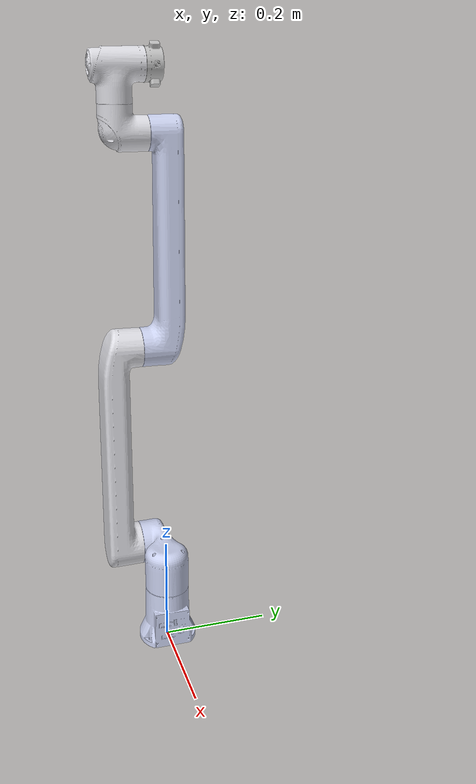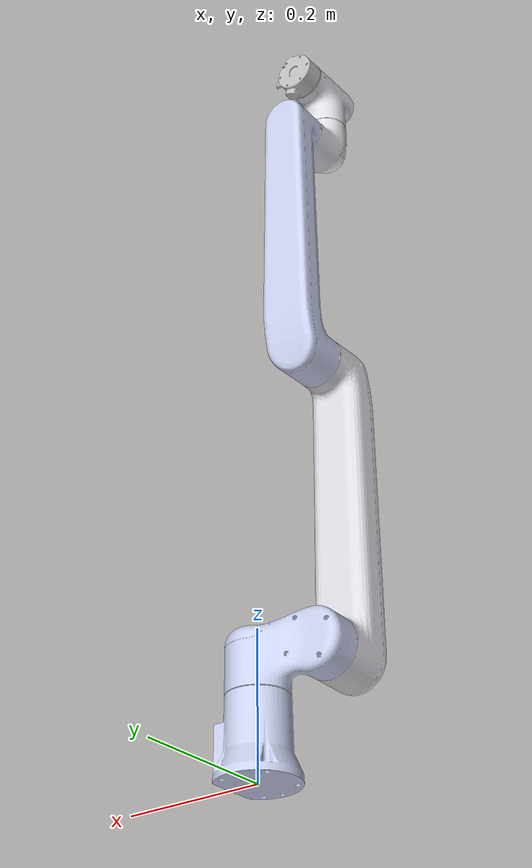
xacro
<?xml version="1.0"?>
<robot xmlns:xacro="http://www.ros.org/wiki/xacro" name="rm_eco63_description">
    <xacro:arg name="link6_type" default="Link6" />

    <!-- Used for fixing robot to Gazebo 'base_link' 将机械手的基座固定在世界坐标上-->
    <link name="world"/>
    <joint name="fixed" type="fixed">
        <parent link="world"/>
        <child link="base_link"/>
    </joint>

    <!-- Import ECO63 robot description. Use the xacro variant so Gazebo gets valid joint limits. -->
    <xacro:property name="link6_type" value="$(arg link6_type)" />
    <xacro:include filename="$(find rm_description)/urdf/rm_eco63_gazebo.urdf.xacro" >
        link6_type:=$(arg link6_type)
    </xacro:include>

    <!-- 对一些link进行gazebo的属性设置 -->
    <gazebo reference="base_link">
        <self_collide>false</self_collide>
        <gravity>false</gravity>
    </gazebo>
    <gazebo reference="Link1">
        <material>Gazebo/Purple</material>
        <self_collide>false</self_collide>
        <gravity>false</gravity>
    </gazebo>
    <gazebo reference="Link2">
        <material>Gazebo/Red</material>
        <gravity>false</gravity>
    </gazebo>
    <gazebo reference="Link3">
        <material>Gazebo/Blue</material>
        <gravity>false</gravity>
    </gazebo>
    <gazebo reference="Link4">
        <material>Gazebo/Green</material>
        <gravity>false</gravity>
    </gazebo>
    <gazebo reference="Link5">
        <material>Gazebo/Yellow</material>
        <gravity>false</gravity>
    </gazebo>
    <gazebo reference="Link6">
        <material>Gazebo/Orange</material>
        <gravity>false</gravity>
    </gazebo>

    <gazebo>
                <self_collide>true</self_collide>
    </gazebo>

    <!-- 声明ros2_control -->
    <ros2_control name="GazeboSystem" type="system">
        <hardware>
            <plugin>gazebo_ros2_control/GazeboSystem</plugin>
        </hardware>
        <joint name="joint1">
            <command_interface name="position"/>
            <state_interface name="position">
                <param name="initial_value">0</param>
            </state_interface>
            <state_interface name="velocity"/>
        </joint>
        <joint name="joint2">
            <command_interface name="position"/>
            <state_interface name="position">
                <param name="initial_value">0</param>
            </state_interface>
            <state_interface name="velocity"/>
        </joint>
        <joint name="joint3">
            <command_interface name="position"/>
            <state_interface name="position">
                <param name="initial_value">0</param>
            </state_interface>
            <state_interface name="velocity"/>
        </joint>
        <joint name="joint4">
            <command_interface name="position"/>
            <state_interface name="position">
                <param name="initial_value">0</param>
            </state_interface>
            <state_interface name="velocity"/>
        </joint>
        <joint name="joint5">
            <command_interface name="position"/>
            <state_interface name="position">
                <param name="initial_value">0</param>
            </state_interface>
            <state_interface name="velocity"/>
        </joint>
        <joint name="joint6">
            <command_interface name="position"/>
            <state_interface name="position">
                <param name="initial_value">0</param>
            </state_interface>
            <state_interface name="velocity"/>
        </joint>
    </ros2_control>

    <!-- 加载ros2_control插件 -->
    <gazebo>
        <plugin filename="libgazebo_ros2_control.so" name="gazebo_ros2_control">
            <parameters>$(find rm_eco63_config)/config/ros2_controllers.yaml</parameters>
            <robot_param>robot_description</robot_param>
            <robot_param_node>robot_state_publisher</robot_param_node>
        </plugin>
    </gazebo>

</robot>

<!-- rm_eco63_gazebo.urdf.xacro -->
<robot  name="rm_eco63_description" xmlns:xacro="http://www.ros.org/wiki/xacro">
    <!-- link6_type -->
    <xacro:arg name="link6_type" default="Link6" />
    <!-- arg->property -->
    <xacro:property name="link6_type" value="$(arg link6_type)" />
    <link
    name="base_link">
    <inertial>
      <origin
        xyz="0.00020533 -8.2462e-05 0.042566"
        rpy="0 0 0" />
      <mass
        value="1" />
      <inertia
        ixx="0.00082414"
        ixy="-2.9336e-06"
        ixz="2.8699e-05"
        iyy="0.0008206"
        iyz="-2.2123e-06"
        izz="0.00068569" />
    </inertial>
    <visual>
      <origin
        xyz="0 0 0"
        rpy="0 0 0" />
      <geometry>
        <mesh
          filename="file://$(find rm_description)/meshes/rm_eco63_arm/base_link.STL" />
      </geometry>
      <material
        name="">
        <color
          rgba="0.792156862745098 0.819607843137255 0.933333333333333 1" />
      </material>
    </visual>
    <collision>
      <origin
        xyz="0 0 0"
        rpy="0 0 0" />
      <geometry>
        <mesh
          filename="file://$(find rm_description)/meshes/rm_eco63_arm/base_link.STL" />
      </geometry>
    </collision>
  </link>
  <link
    name="Link1">
    <inertial>
      <origin
        xyz="-0.0122 -0.0001 -0.0346"
        rpy="0 0 0" />
      <mass
        value="1.6026" />
      <inertia
        ixx="0.0020078355"
        ixy="-4.3739e-05"
        ixz="-0.0006663696"
        iyy="0.0033806191"
        iyz="-1.14927e-05"
        izz="0.0025157844" />
    </inertial>
    <visual>
      <origin
        xyz="0 0 0"
        rpy="0 0 0" />
      <geometry>
        <mesh
          filename="file://$(find rm_description)/meshes/rm_eco63_arm/Link1.STL" />
      </geometry>
      <material
        name="">
        <color
          rgba="0.792156862745098 0.819607843137255 0.933333333333333 1" />
      </material>
    </visual>
    <collision>
      <origin
        xyz="0 0 0"
        rpy="0 0 0" />
      <geometry>
        <mesh
          filename="file://$(find rm_description)/meshes/rm_eco63_arm/Link1.STL" />
      </geometry>
    </collision>
  </link>
  <joint
    name="joint1"
    type="revolute">
    <origin
      xyz="0 0 0.1625"
      rpy="0 0 0" />
    <parent
      link="base_link" />
    <child
      link="Link1" />
    <axis
      xyz="0 0 1" />
    <limit
      lower="-3.106"
      upper="3.106"
      effort="60"
      velocity="3.14" />
  </joint>
  <link
    name="Link2">
    <inertial>
      <origin
        xyz="0.123600000728332 9.86871964907185e-05 0.0551000007331541"
        rpy="0 0 0" />
      <mass
        value="2.8169" />
      <inertia
        ixx="0.00305137723898191"
        ixy="2.86097284213423e-06"
        ixz="0.00369151818306214"
        iyy="0.059635782030822"
        iyz="-4.77799806514506e-06"
        izz="0.059632876930196" />
    </inertial>
    <visual>
      <origin
        xyz="0 0 0"
        rpy="-3.14158530717959 0 -7.34641020638804e-06" />
      <geometry>
        <mesh
          filename="file://$(find rm_description)/meshes/rm_eco63_arm/Link2.STL" />
      </geometry>
      <material
        name="">
        <color
          rgba="0.866666666666667 0.866666666666667 0.890196078431372 1" />
      </material>
    </visual>
    <collision>
      <origin
        xyz="0 0 0"
        rpy="-3.14158530717959 0 -7.34641020638804e-06" />
      <geometry>
        <mesh
          filename="file://$(find rm_description)/meshes/rm_eco63_arm/Link2.STL" />
      </geometry>
    </collision>
  </link>
  <joint
    name="joint2"
    type="revolute">
    <origin
      xyz="-0.086 0 0"
      rpy="-1.57079265348487 -1.57079265358979 3.14159265348487" />
    <parent
      link="Link1" />
    <child
      link="Link2" />
    <axis
      xyz="5.39695145436e-11 7.34641020638507e-06 -0.999999999973015" />
    <limit
      lower="-3.106"
      upper="2.356"
      effort="60"
      velocity="3.14" />
  </joint>
  <link
    name="Link3">
    <inertial>
      <origin
        xyz="0.160246774026992 -9.88120953800659e-05 0.00679865060963923"
        rpy="0 0 0" />
      <mass
        value="2.6857" />
      <inertia
        ixx="0.00303448689033119"
        ixy="-7.56149251500227e-06"
        ixz="-0.00404883344765761"
        iyy="0.0669637574904248"
        iyz="-7.95641618581859e-06"
        izz="0.0659921968192439" />
    </inertial>
    <visual>
      <origin
        xyz="0 0 0"
        rpy="-6.43905470160977e-08 -0.00872659994555747 7.41080075348466e-06" />
      <geometry>
        <mesh
          filename="file://$(find rm_description)/meshes/rm_eco63_arm/Link3.STL" />
      </geometry>
      <material
        name="">
        <color
          rgba="0.792156862745098 0.819607843137255 0.933333333333333 1" />
      </material>
    </visual>
    <collision>
      <origin
        xyz="0 0 0"
        rpy="-6.43905470160977e-08 -0.00872659994555747 7.41080075348466e-06" />
      <geometry>
        <mesh
          filename="file://$(find rm_description)/meshes/rm_eco63_arm/Link3.STL" />
      </geometry>
    </collision>
  </link>
  <joint
    name="joint3"
    type="revolute">
    <origin
      xyz="0.409999999988936 -3.01202818462926e-06 0"
      rpy="-3.14158530717959 -0.00872660000000014 0" />
    <parent
      link="Link2" />
    <child
      link="Link3" />
    <axis
      xyz="-0.00872648918596077 -2.79725562366948e-10 0.999961923468332" />
    <limit
      lower="-2.932"
      upper="2.7576"
      effort="30"
      velocity="3.14" />
  </joint>
  <link
    name="Link4">
    <inertial>
      <origin
        xyz="2.66160203449442e-07 -0.035899999999215 0.0036999999980435"
        rpy="0 0 0" />
      <mass
        value="0.625" />
      <inertia
        ixx="0.000545633601743592"
        ixy="-1.17310739645598e-07"
        ixz="-1.19697712100337e-07"
        iyy="0.000317334498257634"
        iyz="-8.13961008963724e-05"
        izz="0.000516969299998772" />
    </inertial>
    <visual>
      <origin
        xyz="0 0 0"
        rpy="5.44983364746417e-11 3.17744588418378e-08 7.41065843880045e-06" />
      <geometry>
        <mesh
          filename="file://$(find rm_description)/meshes/rm_eco63_arm/Link4.STL" />
      </geometry>
      <material
        name="">
        <color
          rgba="0.866666666666667 0.866666666666667 0.890196078431372 1" />
      </material>
    </visual>
    <collision>
      <origin
        xyz="0 0 0"
        rpy="5.44983364746417e-11 3.17744588418378e-08 7.41065843880045e-06" />
      <geometry>
        <mesh
          filename="file://$(find rm_description)/meshes/rm_eco63_arm/Link4.STL" />
      </geometry>
    </collision>
  </link>
  <joint
    name="joint4"
    type="revolute">
    <origin
      xyz="0.380499512394097 2.81601353437318e-06 -0.0555806914397865"
      rpy="-0.0087266 0 1.5708" />
    <parent
      link="Link3" />
    <child
      link="Link4" />
    <axis
      xyz="3.17744590494417e-08 -5.42628458021758e-11 0.999999999999999" />
    <limit
      lower="-3.106"
      upper="3.106"
      effort="10"
      velocity="3.14" />
  </joint>
  <link
    name="Link5">
    <inertial>
      <origin
        xyz="-4.81280235991029e-08 0.0246000000003597 -0.0065999999984839"
        rpy="0 0 0" />
      <mass
        value="0.6743" />
      <inertia
        ixx="0.000685065899806789"
        ixy="-5.79550732114318e-07"
        ixz="-1.08014144854789e-08"
        iyy="0.00038733730004918"
        iyz="-0.000113520795720502"
        izz="0.000617891800144028" />
    </inertial>
    <visual>
      <origin
        xyz="0 0 0"
        rpy="5.42627659536425e-11 7.41065832210452e-06 -3.18016794599308e-08" />
      <geometry>
        <mesh
          filename="file://$(find rm_description)/meshes/rm_eco63_arm/Link5.STL" />
      </geometry>
      <material
        name="">
        <color
          rgba="0.866666666666667 0.866666666666667 0.890196078431372 1" />
      </material>
    </visual>
    <collision>
      <origin
        xyz="0 0 0"
        rpy="5.42627659536425e-11 7.41065832210452e-06 -3.18016794599308e-08" />
      <geometry>
        <mesh
          filename="file://$(find rm_description)/meshes/rm_eco63_arm/Link5.STL" />
      </geometry>
    </collision>
  </link>
  <joint
    name="joint5"
    type="revolute">
    <origin
      xyz="8.15172428261992e-07 -0.109999999996979 -5.99481932343507e-12"
      rpy="1.5708 0 0" />
    <parent
      link="Link4" />
    <child
      link="Link5" />
    <axis
      xyz="7.41065832198128e-06 -5.4498458344048e-11 0.999999999972541" />
    <limit
      lower="-3.106"
      upper="3.106"
      effort="10"
      velocity="3.14" />
  </joint>
    <xacro:if value="${ link6_type =='Link6' }">
        <link
    name="Link6">
    <inertial>
      <origin
        xyz="0.000999999679050503 7.41120649346072e-09 -0.0101000000317744"
        rpy="0 0 0" />
      <mass
        value="0.107" />
      <inertia
        ixx="4.41232009230933e-05"
        ixy="-6.35329685252655e-08"
        ixz="-2.99699108468827e-07"
        iyy="3.50777990578641e-05"
        iyz="-2.89022206024016e-08"
        izz="6.54409000190423e-05" />
    </inertial>
    <visual>
      <origin
        xyz="0 0 0"
        rpy="5.44983364746417e-11 3.17744588418378e-08 7.41065843880045e-06" />
      <geometry>
        <mesh
          filename="file://$(find rm_description)/meshes/rm_eco63_arm/Link6.STL" />
      </geometry>
      <material
        name="">
        <color
          rgba="0.752941176470588 0.752941176470588 0.752941176470588 1" />
      </material>
    </visual>
    <collision>
      <origin
        xyz="0 0 0"
        rpy="5.44983364746417e-11 3.17744588418378e-08 7.41065843880045e-06" />
      <geometry>
        <mesh
          filename="file://$(find rm_description)/meshes/rm_eco63_arm/Link6.STL" />
      </geometry>
    </collision>
  </link>
  <joint
    name="joint6"
    type="revolute">
    <origin
      xyz="2.52823355345104e-09 0.0794999999999999 4.31388822291248e-12"
      rpy="-1.5708 0 0" />
    <parent
      link="Link5" />
    <child
      link="Link6" />
    <axis
      xyz="3.177445904944e-08 -5.42628458021758e-11 0.999999999999999" />
    <limit
      lower="-6.28"
      upper="6.28"
      effort="10"
      velocity="3.14" />
  </joint>
    </xacro:if>
    <xacro:if value="${ link6_type =='Link6_6fb' }">
      <link
    name="Link6">
    <inertial>
      <origin
        xyz="0.000999999679050503 7.41120649346072e-09 -0.0101000000317744"
        rpy="0 0 0" />
      <mass
        value="0.248" />
      <inertia
        ixx="4.41232009230933e-05"
        ixy="-6.35329685252655e-08"
        ixz="-2.99699108468827e-07"
        iyy="3.50777990578641e-05"
        iyz="-2.89022206024016e-08"
        izz="6.54409000190423e-05" />
    </inertial>
    <visual>
      <origin
        xyz="0 0 0"
        rpy="5.44983364746417e-11 3.17744588418378e-08 7.41065843880045e-06" />
      <geometry>
        <mesh
          filename="file://$(find rm_description)/meshes/rm_eco63_arm/Link6_6fb.STL" />
      </geometry>
      <material
        name="">
        <color
          rgba="0.866666666666667 0.866666666666667 0.890196078431372 1" />
      </material>
    </visual>
    <collision>
      <origin
        xyz="0 0 0"
        rpy="5.44983364746417e-11 3.17744588418378e-08 7.41065843880045e-06" />
      <geometry>
        <mesh
          filename="file://$(find rm_description)/meshes/rm_eco63_arm/Link6_6fb.STL" />
      </geometry>
    </collision>
  </link>
  <joint
    name="joint6"
    type="revolute">
    <origin
      xyz="3.06886211205063e-09 0.0964999999999999 5.2363548869315e-12"
      rpy="-1.5708 0 0" />
    <parent
      link="Link5" />
    <child
      link="Link6" />
    <axis
      xyz="3.177445904944e-08 -5.42628458021758e-11 0.999999999999999" />
    <limit
      lower="-6.28"
      upper="6.28"
      effort="10"
      velocity="3.14" />
  </joint>
    </xacro:if>
</robot>
